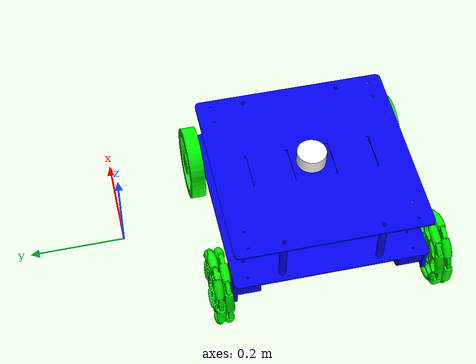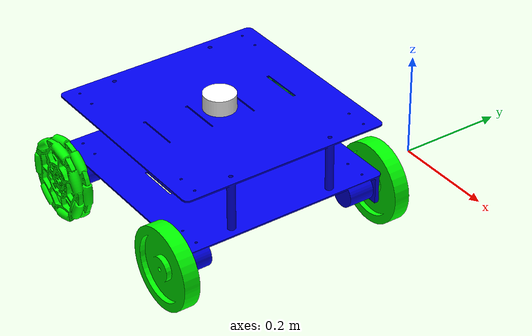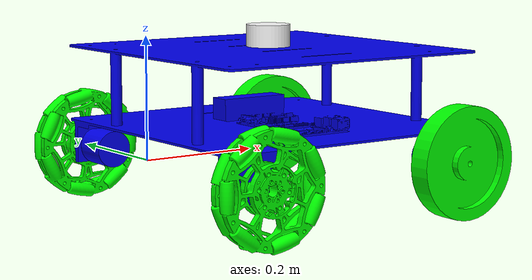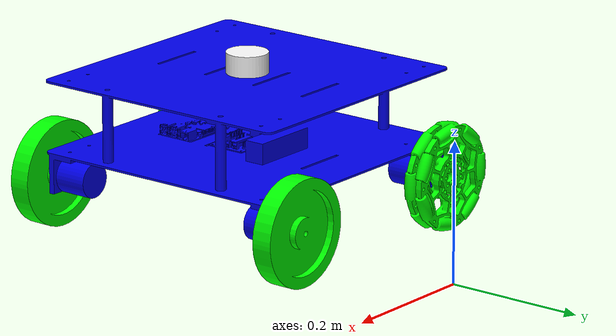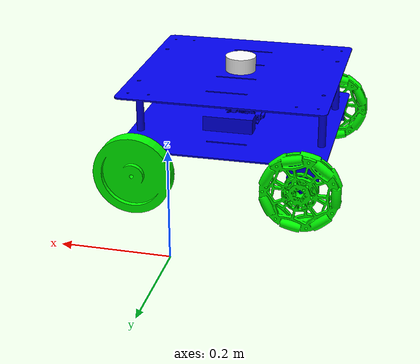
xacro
<?xml version="1.0" encoding="utf-8"?>
<robot
  name="bot_description" xmlns:xacro="http://www.ros.org/wiki/xacro">
  <link
    name="base_link">
    <inertial>
      <origin
        xyz="-0.040436 -0.3851 0.1295"
        rpy="0 0 0" />
      <mass
        value="1" />
      <inertia
        ixx="0.012939"
        ixy="-1.7356E-07"
        ixz="-9.2877E-07"
        iyy="0.013081"
        iyz="5.526E-09"
        izz="0.025689" />
    </inertial>
    <visual>
      <origin
        xyz="0 0 0"
        rpy="0 0 0" />
      <geometry>
        <mesh
          filename="package://bot_description/meshes/base_link.STL" />
      </geometry>
      <material
        name="">
        <color
          rgba="0 0 0.93333 1" />
      </material>
    </visual>
    <collision>
      <origin
        xyz="0 0 0"
        rpy="0 0 0" />
      <geometry>
        <mesh
          filename="package://bot_description/meshes/base_link.STL" />
      </geometry>
    </collision>
  </link>
  <link
    name="rf_wheel">
    <inertial>
      <origin
        xyz="1.1082E-07 0.021961 1.2751E-07"
        rpy="0 0 0" />
      <mass
        value="0.1" />
      <inertia
        ixx="0.00013963"
        ixy="-6.8362E-10"
        ixz="-7.7213E-11"
        iyy="0.00027302"
        iyz="7.1636E-10"
        izz="0.00013963" />
    </inertial>
    <visual>
      <origin
        xyz="0 0 0"
        rpy="0 0 0" />
      <geometry>
        <mesh
          filename="package://bot_description/meshes/rf_wheel.STL" />
      </geometry>
      <material
        name="">
        <color
          rgba="0 1 0 1" />
      </material>
    </visual>
    <collision>
      <origin
        xyz="0 0 0"
        rpy="0 0 0" />
      <geometry>
        <mesh
          filename="package://bot_description/meshes/rf_wheel.STL" />
      </geometry>
    </collision>
  </link>
  <joint
    name="rfjoint"
    type="continuous">
    <origin
      xyz="-0.20094 -0.14188 0.069457"
      rpy="3.1416 0 0" />
    <parent
      link="base_link" />
    <child
      link="rf_wheel" />
    <axis
      xyz="0 1 0" />
    <limit
      effort="100"
      velocity="2" />
  </joint>
  <link
    name="lf_wheel">
    <inertial>
      <origin
        xyz="1.1082E-07 -0.020842 1.2751E-07"
        rpy="0 0 0" />
      <mass
        value="0.1" />
      <inertia
        ixx="0.00013963"
        ixy="-6.8362E-10"
        ixz="-7.7213E-11"
        iyy="0.00027302"
        iyz="7.1636E-10"
        izz="0.00013963" />
    </inertial>
    <visual>
      <origin
        xyz="0 0 0"
        rpy="0 0 0" />
      <geometry>
        <mesh
          filename="package://bot_description/meshes/lf_wheel.STL" />
      </geometry>
      <material
        name="">
        <color
          rgba="0 1 0 1" />
      </material>
    </visual>
    <collision>
      <origin
        xyz="0 0 0"
        rpy="0 0 0" />
      <geometry>
        <mesh
          filename="package://bot_description/meshes/lf_wheel.STL" />
      </geometry>
    </collision>
  </link>
  <joint
    name="lfjoint"
    type="continuous">
    <origin
      xyz="-0.20094 -0.59 0.069457"
      rpy="0 0 0" />
    <parent
      link="base_link" />
    <child
      link="lf_wheel" />
    <axis
      xyz="0 -1 0" />
    <limit
      effort="100"
      velocity="2" />
  </joint>
  <link
    name="rb_wheel">
    <inertial>
      <origin
        xyz="0 -1.3878E-17 0.015"
        rpy="0 0 0" />
      <mass
        value="2" />
      <inertia
        ixx="0.00060618"
        ixy="-7.6219E-37"
        ixz="-2.0514E-22"
        iyy="0.00060618"
        iyz="-2.0536E-36"
        izz="0.001173" />
    </inertial>
    <visual>
      <origin
        xyz="0 0 0"
        rpy="0 0 0" />
      <geometry>
        <mesh
          filename="package://bot_description/meshes/rb_wheel.STL" />
      </geometry>
      <material
        name="">
        <color
          rgba="0 1 0 1" />
      </material>
    </visual>
    <collision>
      <origin
        xyz="0 0 0"
        rpy="0 0 0" />
      <geometry>
        <mesh
          filename="package://bot_description/meshes/rb_wheel.STL" />
      </geometry>
    </collision>
  </link>
  <joint
    name="rbjoint"
    type="continuous">
    <origin
      xyz="0.11906 -0.15734 0.069457"
      rpy="1.5708 0 0" />
    <parent
      link="base_link" />
    <child
      link="rb_wheel" />
    <axis
      xyz="0 0 1" />
    <limit
      effort="100"
      velocity="2" />
  </joint>
  <link
    name="lb_wheel">
    <inertial>
      <origin
        xyz="3.4278E-15 1.3878E-17 0.015"
        rpy="0 0 0" />
      <mass
        value="2" />
      <inertia
        ixx="0.00060618"
        ixy="-7.6219E-37"
        ixz="-1.2081E-36"
        iyy="0.00060618"
        iyz="-2.0536E-36"
        izz="0.001173" />
    </inertial>
    <visual>
      <origin
        xyz="0 0 0"
        rpy="0 0 0" />
      <geometry>
        <mesh
          filename="package://bot_description/meshes/lb_wheel.STL" />
      </geometry>
      <material
        name="">
        <color
          rgba="0 1 0 1" />
      </material>
    </visual>
    <collision>
      <origin
        xyz="0 0 0"
        rpy="0 0 0" />
      <geometry>
        <mesh
          filename="package://bot_description/meshes/lb_wheel.STL" />
      </geometry>
    </collision>
  </link>
  <joint
    name="lbjoint"
    type="continuous">
    <origin
      xyz="0.11906 -0.58734 0.069457"
      rpy="1.5708 0 0" />
    <parent
      link="base_link" />
    <child
      link="lb_wheel" />
    <axis
      xyz="0 0 1" />
    <limit
      effort="100"
      velocity="2" />
  </joint>

  <link
    name="Lidar">
    <inertial>
      <origin
        xyz="0 0 0"
        rpy="0 0 0" />
      <mass
        value="0.5" />
      <inertia
        ixx="0.01"
        ixy="0.01"
        ixz="0.01"
        iyy="0"
        iyz="0"
        izz="0" />
    </inertial>
    <visual>
      <origin
        xyz="0 0 0"
        rpy="1.5707 0 0" />
      <geometry>
        <mesh
          filename="package://bot_description/meshes/Lidar.STL" />
      </geometry>
      <material
        name="">
        <color
          rgba="1 1 1 1" />
      </material>
    </visual>
    <collision>
      <origin
        xyz="0 0 0"
        rpy="1.5707 0 0" />
      <geometry>
        <mesh
          filename="package://bot_description/meshes/Lidar.STL" />
      </geometry>
    </collision>
  </link>
  <joint
    name="Lidarjoint"
    type="fixed">
    <origin
      xyz="-0.040937 -0.38734 0.21546"
      rpy="0 0 0" />
    <parent
      link="base_link" />
    <child
      link="Lidar" />
  </joint>

          <gazebo reference="Lidar">
            <material>Gazebo/Black</material>
        </gazebo>
                <gazebo reference="Lidar">
            <sensor type="ray" name="rplidar">
                <pose>0 0 0 0 0 0</pose>
                <visualize>false</visualize>
                <update_rate>5.5</update_rate>
                <ray>
                    <scan>
                      <horizontal>
                        <samples>360</samples>
                        <resolution>1</resolution>
                        <min_angle>-3</min_angle>
                        <max_angle>3</max_angle>
                      </horizontal>
                    </scan>
                    <range>
                      <min>0.10</min>
                      <max>6.0</max>
                      <resolution>0.01</resolution>
                    </range>
                    <noise>
                      <type>gaussian</type>
                      <mean>0.0</mean>
                      <stddev>0.01</stddev>
                    </noise>
                </ray>
                <plugin name="gazebo_rplidar" filename="libgazebo_ros_laser.so">
                    <topicName>/scan</topicName>
                    <frameName>Lidar</frameName>
                </plugin>
            </sensor>
        </gazebo>

        <transmission name="rf_joint_trans">
            <type>transmission_interface/SimpleTransmission</type>
            <joint name="rfjoint" >
                <hardwareInterface>hardware_interface/VelocityJointInterface</hardwareInterface>
            </joint>
            <actuator name="rf_joint_motor">
                <hardwareInterface>hardware_interface/VelocityJointInterface</hardwareInterface>
                <mechanicalReduction>1</mechanicalReduction>
            </actuator>
        </transmission>
        <transmission name="rb_joint_trans">
            <type>transmission_interface/SimpleTransmission</type>
            <joint name="rbjoint" >
                <hardwareInterface>hardware_interface/VelocityJointInterface</hardwareInterface>
            </joint>
            <actuator name="rb_joint_motor">
                <hardwareInterface>hardware_interface/VelocityJointInterface</hardwareInterface>
                <mechanicalReduction>1</mechanicalReduction>
            </actuator>
        </transmission>
        <transmission name="lf_joint_trans">
            <type>transmission_interface/SimpleTransmission</type>
            <joint name="lfjoint" >
                <hardwareInterface>hardware_interface/VelocityJointInterface</hardwareInterface>
            </joint>
            <actuator name="lf_joint_motor">
                <hardwareInterface>hardware_interface/VelocityJointInterface</hardwareInterface>
                <mechanicalReduction>1</mechanicalReduction>
            </actuator>
        </transmission>
        <transmission name="lb_joint_trans">
            <type>transmission_interface/SimpleTransmission</type>
            <joint name="lbjoint" >
                <hardwareInterface>hardware_interface/VelocityJointInterface</hardwareInterface>
            </joint>
            <actuator name="lb_joint_motor">
                <hardwareInterface>hardware_interface/VelocityJointInterface</hardwareInterface>
                <mechanicalReduction>1</mechanicalReduction>
            </actuator>
        </transmission>

        <gazebo>
            <plugin name="differential_drive_controller"
                    filename="libgazebo_ros_diff_drive.so">
                <rosDebugLevel>Debug</rosDebugLevel>
                <publishWheelTF>true</publishWheelTF>
                <robotNamespace>/</robotNamespace>
                <publishTf>1</publishTf>
                <publishWheelJointState>true</publishWheelJointState>
                <alwaysOn>true</alwaysOn>
                <updateRate>100.0</updateRate>
                <legacyMode>true</legacyMode>
                <leftJoint>rbjoint</leftJoint>
                <rightJoint>lbjoint</rightJoint>
                <wheelSeparation>0.43</wheelSeparation>
                <wheelDiameter>0.152</wheelDiameter>
                <broadcastTF>1</broadcastTF>
                <wheelTorque>30</wheelTorque>
                <wheelAcceleration>1.8</wheelAcceleration>
                <commandTopic>cmd_vel</commandTopic>
                <odometryFrame>odom</odometryFrame>
                <odometryTopic>odom</odometryTopic>
                <robotBaseFrame>base_link</robotBaseFrame>
            </plugin>
        </gazebo>
</robot>
